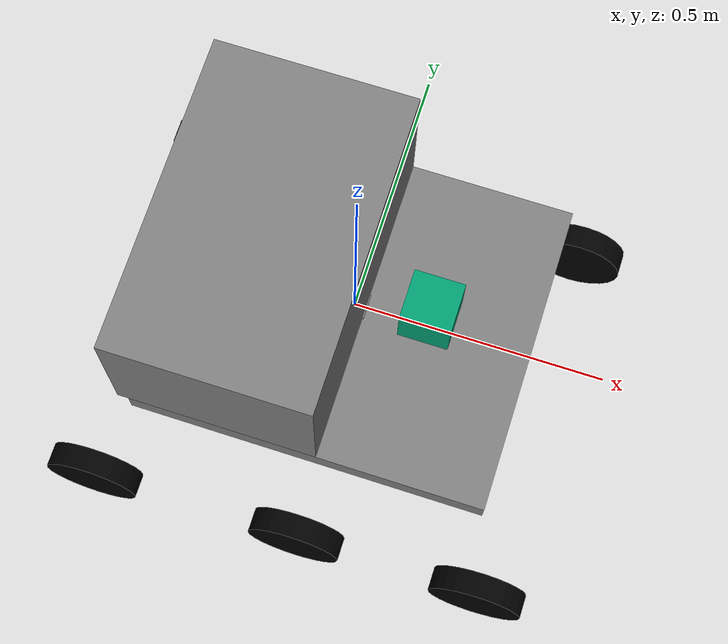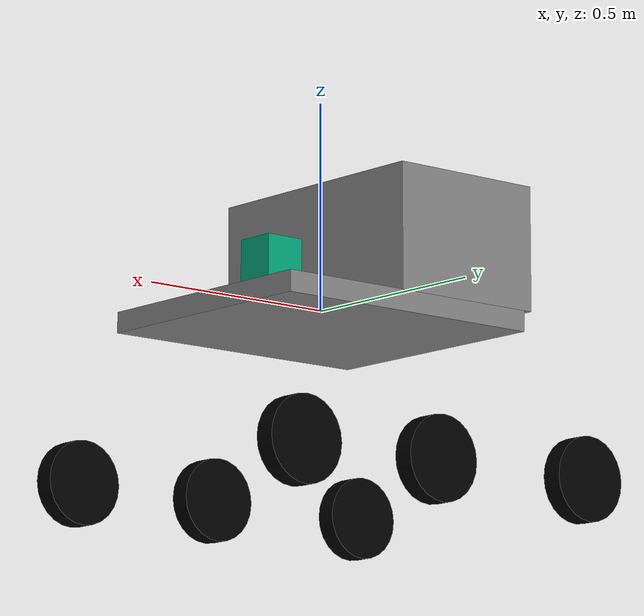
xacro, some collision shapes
<?xml version="1.0"?>
<robot name="pegasus3"
    xmlns:xacro="http://www.ros.org/wiki/xacro">
    <!-- Put here the robot description -->

    <xacro:arg name="laser_enabled" default="true" />
    <xacro:arg name="kinect_enabled" default="false" />

    <!-- Degree-to-radian conversions -->
    <xacro:property name="degrees_45" value="0.785398163"/>
    <xacro:property name="degrees_90" value="1.57079633"/>
    <xacro:property name="M_PI" value="3.1415926535897931" />

    <!-- body_length is measured along the x axis, body_width
       along the y axis, and body_height along the z axis. -->
    <xacro:property name="body_length" value="0.71"/>
    <xacro:property name="body_width" value="0.63"/>
    <xacro:property name="body_height" value="0.05"/>
    <xacro:property name="body_mass" value="10"/>
    <xacro:property name="body_clearance" value="0.40"/>

    <!-- electronics_length is measured along the x axis, electronics_width
       along the y axis, and electronics_height along the z axis. -->
    <xacro:property name="electronics_length" value="0.4"/>
    <xacro:property name="electronics_width" value="0.63"/>
    <xacro:property name="electronics_height" value="0.3"/>
    <xacro:property name="electronics_mass" value="10"/>
    <xacro:property name="electronics_clearance" value="0.40"/>

    <xacro:property name="wheelbase_rocker" value="1.0"/>
    <xacro:property name="wheelbase_bogie" value="0.40"/>
    <xacro:property name="x_center_rocker" value="0.045"/>
    <xacro:property name="x_center_bogie" value="0.20"/>
    <xacro:property name="track" value="0.800"/>

    <xacro:property name="hub_dia" value="0.180"/>
    <xacro:property name="tire_dia" value="0.2"/>
    <xacro:property name="tire_width" value="0.05"/>
    <xacro:property name="wheel_mass" value="0.200"/>

    <xacro:property name="axle_eff_limit" value="200"/>
    <xacro:property name="axle_vel_limit" value="244.8696"/>

    <material name="body_mat">
        <color rgba="0.5 0.5 0.5 1"/>
    </material>
    <material name="tire_mat">
        <color rgba="0 0 0 1"/>
    </material>

    <!-- Null inertial element. This is needed to make the model work with
       Gazebo. -->
    <xacro:macro name="null_inertial">
        <inertial>
            <mass value="0.001"/>
            <inertia ixx="0.001" ixy="0" ixz="0" iyy="0.001" iyz="0" izz="0.001"/>
        </inertial>
    </xacro:macro>

    <!-- Inertia of a solid cuboid. Width is measured along the x axis, depth
       along the y axis, and height along the z axis. -->
    <xacro:macro name="solid_cuboid_inertial" params="width depth height mass *origin">
        <inertial>
            <xacro:insert_block name="origin"/>
            <mass value="${mass}"/>
            <inertia ixx="${mass * (depth * depth + height * height) / 12}" ixy="0" ixz="0" iyy="${mass * (width * width + height * height) / 12}" iyz="0" izz="${mass * (width * width + depth * depth) / 12}"/>
        </inertial>
    </xacro:macro>

    <xacro:macro name="thick_walled_tube_inertial" params="inner_rad outer_rad height mass">
        <inertial>
            <mass value="${mass}"/>
            <inertia ixx="${(1 / 12) * mass * (3 * (inner_rad * inner_rad +
                    outer_rad * outer_rad) + height * height)}" ixy="0" ixz="0" iyy="${(1 / 12) * mass * (3 * (inner_rad * inner_rad +
                    outer_rad * outer_rad) + height * height)}" iyz="0" izz="${mass * (inner_rad * inner_rad +
                    outer_rad * outer_rad) / 2}"/>
        </inertial>
    </xacro:macro>

    <!-- The "wheel" macro defines an axle carrier, axle, and wheel. -->
    <xacro:macro name="wheel" params="lr_prefix fr_prefix lr_pos fr_pos">
        <joint name="${lr_prefix}_${fr_prefix}_axle" type="continuous">
            <parent link="base_link"/>
            <child link="${lr_prefix}_${fr_prefix}_wheel"/>
            <origin xyz="${fr_pos}
                   ${lr_pos}
                   ${- body_clearance}" rpy="${degrees_90} 0 0"/>
            <axis xyz="0 0 -1"/>
            <limit effort="${axle_eff_limit}" velocity="${axle_vel_limit}"/>
        </joint>
        <transmission name="${lr_prefix}_${fr_prefix}_axle_trans">
            <type>transmission_interface/SimpleTransmission</type>
            <joint name="${lr_prefix}_${fr_prefix}_axle">
                <hardwareInterface>hardware_interface/VelocityJointInterface</hardwareInterface>
            </joint>
            <actuator name="${lr_prefix}_${fr_prefix}_axle_act">
                <hardwareInterface>hardware_interface/VelocityJointInterface</hardwareInterface>
                <mechanicalReduction>1</mechanicalReduction>
            </actuator>
        </transmission>

        <link name="${lr_prefix}_${fr_prefix}_wheel">
            <visual>
                <origin xyz="0 0 0"/>
                <geometry>
                    <cylinder radius="${tire_dia / 2}" length="${tire_width}"/>
                </geometry>
                <material name="tire_mat"/>
            </visual>

            <collision>
                <origin xyz="0 0 0"/>
                <geometry>
                    <cylinder radius="${tire_dia / 2}" length="${tire_width}"/>
                </geometry>
            </collision>

            <xacro:thick_walled_tube_inertial inner_rad="${hub_dia / 2}" outer_rad="${tire_dia / 2}" height="${tire_width}" mass="${wheel_mass}"/>
        </link>

        <gazebo reference="${lr_prefix}_${fr_prefix}_wheel">
            <material>Gazebo/Black</material>
        </gazebo>
    </xacro:macro>

    <!-- base_link must have geometry so that its axes can be displayed in
       rviz. -->
    <link name="base_link">
        <visual>
            <geometry>
                <box size="0.05 0.05 0.01"/>
            </geometry>
            <material name="body_mat"/>
        </visual>
    </link>
    <gazebo reference="base_link">
        <material>Gazebo/Green</material>
    </gazebo>

    <joint name="imu_joint" type="fixed">
        <axis xyz="1 0 0"/>
        <origin xyz="0 0 0.05"/>
        <parent link="base_link"/>
        <child link="imu_link"/>
    </joint>

    <link name="imu_link">
        <inertial>
            <mass value="0.001"/>
            <origin rpy="0 0 0" xyz="0 0 0"/>
            <inertia ixx="0.0001" ixy="0" ixz="0" iyy="0.000001" iyz="0" izz="0.0001"/>
        </inertial>
        <visual>
            <origin rpy="0 0 0" xyz="0 0 0"/>
            <geometry>
                <box size="0.001 0.001 0.001"/>
            </geometry>
        </visual>
        <collision>
            <origin rpy="0 0 0" xyz="0 0 0"/>
            <geometry>
                <box size=".001 .001 .001"/>
            </geometry>
        </collision>
    </link>

    <!-- body -->
    <link name="body">
        <visual>
            <origin xyz="0 0 ${-body_height / 2}"/>
            <geometry>
                <box size="${body_length} ${body_width} ${body_height}"/>
            </geometry>
            <material name="body_mat"/>
        </visual>

        <collision>
            <origin xyz="0 0 ${-body_height / 2}"/>
            <geometry>
                <box size="${body_length} ${body_width} ${body_height}"/>
            </geometry>
        </collision>

        <xacro:solid_cuboid_inertial width="${body_length}" depth="${body_width}" height="${body_height}" mass="${body_mass}">
            <origin xyz="0 0 ${-body_height / 2}"/>
        </xacro:solid_cuboid_inertial>
    </link>
    <gazebo reference="body">
        <material>Gazebo/Grey</material>
    </gazebo>

    <joint name="base_link_to_chasis" type="fixed">
        <parent link="base_link"/>
        <child link="body"/>
    </joint>

    <!-- electronics case -->
    <link name="electronics">
        <visual>
            <origin xyz="${- body_length / 4} 0 ${electronics_height / 2}"/>
            <geometry>
                <box size="${electronics_length} ${electronics_width} ${electronics_height}"/>
            </geometry>
            <material name="body_mat"/>
        </visual>

        <collision>
            <origin xyz="${- body_length / 4} 0 ${electronics_height / 2}"/>
            <geometry>
                <box size="${electronics_length} ${electronics_width} ${electronics_height}"/>
            </geometry>
        </collision>

        <xacro:solid_cuboid_inertial width="${electronics_length}" depth="${electronics_width}" height="${electronics_height}" mass="${electronics_mass}">
            <origin xyz="0 0 ${-body_height / 2}"/>
        </xacro:solid_cuboid_inertial>
    </link>
    <gazebo reference="electronics">
        <material>Gazebo/Red</material>
    </gazebo>

    <joint name="chassis_link_to_electronics" type="fixed">
        <parent link="body"/>
        <child link="electronics"/>
    </joint>

    <!-- Wheels -->
    <xacro:wheel lr_prefix="left_bogie" fr_prefix="front" lr_pos="${track / 2}" fr_pos="${x_center_bogie + wheelbase_bogie / 2}" />
    <xacro:wheel lr_prefix="left_bogie" fr_prefix="rear" lr_pos="${track / 2}" fr_pos="${x_center_bogie - wheelbase_bogie / 2}" />
    <xacro:wheel lr_prefix="left_rocker" fr_prefix="rear" lr_pos="${track / 2}" fr_pos="${x_center_rocker - wheelbase_rocker / 2}" />
    <xacro:wheel lr_prefix="right_bogie" fr_prefix="front" lr_pos="${- track / 2}" fr_pos="${x_center_bogie + wheelbase_bogie / 2}" />
    <xacro:wheel lr_prefix="right_bogie" fr_prefix="rear" lr_pos="${- track / 2}" fr_pos="${x_center_bogie - wheelbase_bogie / 2}" />
    <xacro:wheel lr_prefix="right_rocker" fr_prefix="rear" lr_pos="${- track / 2}" fr_pos="${x_center_rocker - wheelbase_rocker / 2}" />

    <gazebo>
        <plugin name="gazebo_ros_control" filename="libgazebo_ros_control.so">
            <legacyModeNS>true</legacyModeNS>
        </plugin>
    </gazebo>

    <xacro:if value="$(arg kinect_enabled)">
        <!-- Depth sensor -->
        <xacro:include filename="$(find pegasus3_description)/urdf/depth_sensor.urdf.xacro" />
        <xacro:depth_sensor name="camera" parent="base_link">
            <origin xyz="${body_length / 2 + 0.05} 0.0 ${-2 * body_height}" rpy="0 0 0"/>
        </xacro:depth_sensor>
    </xacro:if>

    <xacro:if value="$(arg laser_enabled)">
        <joint name="hokuyo_joint" type="fixed">
            <axis xyz="0 1 0" />
            <origin xyz=".15 0 .1" rpy="0 0 0"/>
            <parent link="base_link"/>
            <child link="hokuyo"/>
        </joint>

        <!-- Hokuyo Laser -->
        <link name="hokuyo">
            <collision>
                <origin xyz="0 0 0" rpy="0 0 0"/>
                <geometry>
                    <box size="0.1 0.1 0.1"/>
                </geometry>
            </collision>

            <visual>
                <origin xyz="0 0 0" rpy="0 0 0"/>
                <geometry>
                    <mesh filename="package://pegasus3_description/meshes/hokuyo.dae"/>
                </geometry>
            </visual>

            <inertial>
                <mass value="1e-5" />
                <origin xyz="0 0 0" rpy="0 0 0"/>
                <inertia ixx="1e-6" ixy="0" ixz="0" iyy="1e-6" iyz="0" izz="1e-6" />
            </inertial>
        </link>
        <gazebo reference="hokuyo">
            <sensor type="ray" name="head_hokuyo_sensor">
                <pose>0 0 0 0 0 0</pose>
                <visualize>true</visualize>
                <update_rate>40</update_rate>
                <ray>
                    <scan>
                        <horizontal>
                            <samples>720</samples>
                            <resolution>1</resolution>
                            <min_angle>${-62.8 * M_PI/360.0}</min_angle>
                            <max_angle>${62.8 * M_PI/360.0}</max_angle>
                        </horizontal>
                    </scan>
                    <range>
                        <min>0.4</min>
                        <max>10.0</max>
                        <resolution>0.01</resolution>
                    </range>
                    <noise>
                        <type>gaussian</type>
                        <mean>0.0</mean>
                        <stddev>0.01</stddev>
                    </noise>
                </ray>
                <plugin name="gazebo_ros_head_hokuyo_controller" filename="libgazebo_ros_laser.so">
                    <topicName>/scan</topicName>
                    <frameName>hokuyo</frameName>
                </plugin>
            </sensor>
        </gazebo>
    </xacro:if>

    <!-- IMU sensor-->

    <plugin name="gps_sim" filename="libhector_gazebo_ros_gps.so">
        <updateRate>1.0</updateRate>
        <bodyName>imu_link</bodyName>
        <frameId>imu_link</frameId>
        <topicName>gps/fix</topicName>
        <velocityTopicName>gps/vel</velocityTopicName>
        <referenceLatitude>46.518125</referenceLatitude>
        <referenceLongitude>6.565539</referenceLongitude>
        <drift>0 0 0</drift>
        <gaussianNoise>0.0 0.0 0.0</gaussianNoise>
        <velocityDrift>0 0 0</velocityDrift>
        <velocityGaussianNoise>0.05 0.05 0.05</velocityGaussianNoise>
    </plugin>

</robot>
